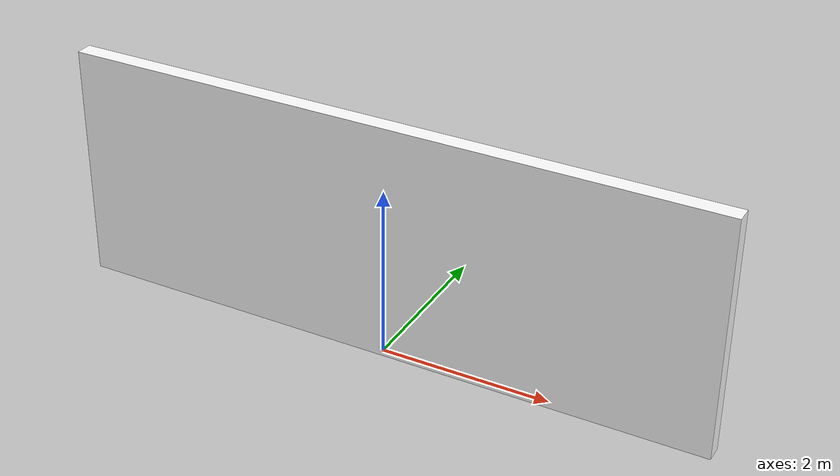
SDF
<?xml version="1.0"?>
<sdf version="1.5">
  <model name="grey_wall">
    <static>true</static>
    <include>
      <uri>https://fuel.ignitionrobotics.org/1.0/OpenRobotics/models/Artifact Proximity Detector</uri>
    </include>
    <link name="link">
      <pose>0 0 1.4 0 0 0</pose>
      <collision name="collision">
        <geometry>
          <box>
            <size>7.65 0.2 2.8</size>
          </box>
        </geometry>
      </collision>
      <visual name="visual">
        <cast_shadows>false</cast_shadows>
        <geometry>
          <box>
            <size>7.65 0.2 2.8</size>
          </box>
        </geometry>
        <material>
          <diffuse>1.0 1.0 1.0</diffuse>
          <specular>1.0 1.0 1.0</specular>
          <pbr>
            <metal>
              <albedo_map>materials/textures/grey_wall.png</albedo_map>
              <normal_map>materials/textures/grey_wall.png</normal_map>
            </metal>
          </pbr>
        </material>
        <plugin filename="ignition-gazebo-thermal-system" name="ignition::gazebo::systems::Thermal">
          <heat_signature>materials/textures/grey_wall.png</heat_signature>
          <min_temp>280</min_temp>
          <max_temp>292</max_temp>
        </plugin>
      </visual>
    </link>
  </model>
</sdf>

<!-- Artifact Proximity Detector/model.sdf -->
<sdf version="1.6">
    <model name="artifact_proximity_detector">
        <static>true</static>
        <pose>0 0 0 0 0 0</pose>
        <plugin filename="libignition-gazebo-performer-detector-system.so" name="ignition::gazebo::systems::PerformerDetector">
            <topic>/subt_performer_detector</topic>
            <header_data>
                <key>type</key>
                <value>artifact_proximity</value>
            </header_data>
            <geometry>
                <box>
                    <size>10 10 10</size>
                </box>
            </geometry>
        </plugin>
    </model>
</sdf>
